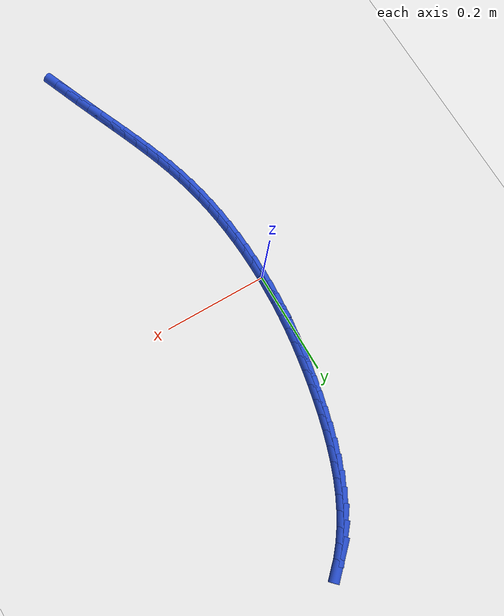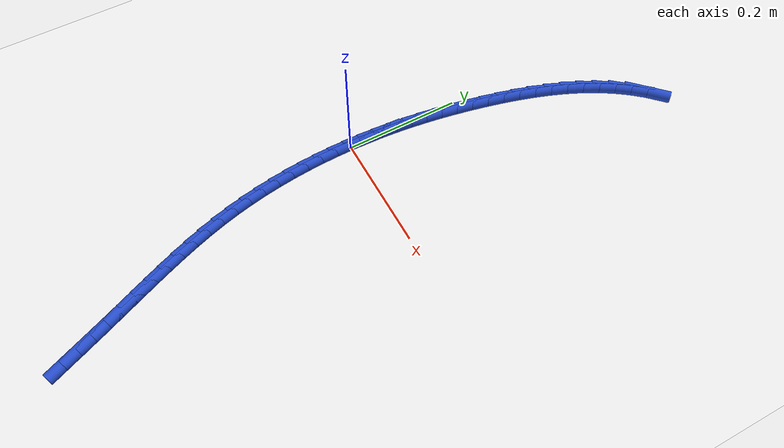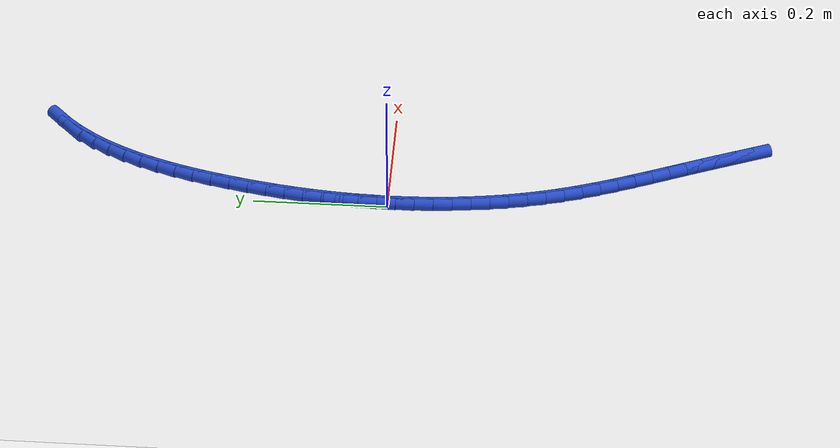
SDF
<sdf version="1.6">
 <world name="default">
  <model name="ground_plane">
   <static>1</static>
   <link name="link">
    <collision name="collision">
     <geometry><plane><normal>0 0 1</normal><size>100 100</size></plane></geometry>
     <surface><friction><ode><mu>100</mu><mu2>50</mu2></ode></friction></surface>
    </collision>
    <visual name="visual">
     <cast_shadows>0</cast_shadows>
     <geometry><plane><normal>0 0 1</normal><size>100 100</size></plane></geometry>
     <material>
      <script><uri>file://media/materials/scripts/gazebo.material</uri><name>Gazebo/WhiteGlow</name></script>
     </material>
    </visual>
   </link>
  </model>
  <model name="line">
   <link name="link_0">
    <pose>1.1709383462843448e-17 -4.163336342344337e-17 0.01 0 1.57 1.5477169663119001</pose>
    <collision name="collision">
     <geometry><cylinder><radius>0.01</radius><length>0.08</length></cylinder></geometry>
    </collision>
    <visual name="visual">
     <material>
      <script><name>Gazebo/Blue</name><uri>file://media/materials/scripts/gazebo.material</uri></script>
     </material>
     <geometry><cylinder><radius>0.01</radius><length>0.08</length></cylinder></geometry>
    </visual>
   </link>
   <link name="link_1">
    <pose>0.0006372369864877311 0.027605783966620057 0.01 0 1.57 1.5208260116175845</pose>
    <collision name="collision">
     <geometry><cylinder><radius>0.01</radius><length>0.08</length></cylinder></geometry>
    </collision>
    <visual name="visual">
     <material>
      <script><name>Gazebo/Blue</name><uri>file://media/materials/scripts/gazebo.material</uri></script>
     </material>
     <geometry><cylinder><radius>0.01</radius><length>0.08</length></cylinder></geometry>
    </visual>
   </link>
   <link name="link_2">
    <pose>0.002013287063719354 0.055120209970029525 0.01 0 1.57 1.4944857000101304</pose>
    <collision name="collision">
     <geometry><cylinder><radius>0.01</radius><length>0.08</length></cylinder></geometry>
    </collision>
    <visual name="visual">
     <material>
      <script><name>Gazebo/Blue</name><uri>file://media/materials/scripts/gazebo.material</uri></script>
     </material>
     <geometry><cylinder><radius>0.01</radius><length>0.08</length></cylinder></geometry>
    </visual>
   </link>
   <link name="link_3">
    <pose>0.004112599532662749 0.08257688266017513 0.01 0 1.57 1.4688265475651985</pose>
    <collision name="collision">
     <geometry><cylinder><radius>0.01</radius><length>0.08</length></cylinder></geometry>
    </collision>
    <visual name="visual">
     <material>
      <script><name>Gazebo/Blue</name><uri>file://media/materials/scripts/gazebo.material</uri></script>
     </material>
     <geometry><cylinder><radius>0.01</radius><length>0.08</length></cylinder></geometry>
    </visual>
   </link>
   <link name="link_4">
    <pose>0.006919623694285787 0.11000940668700365 0.01 0 1.57 1.4439686259812823</pose>
    <collision name="collision">
     <geometry><cylinder><radius>0.01</radius><length>0.08</length></cylinder></geometry>
    </collision>
    <visual name="visual">
     <material>
      <script><name>Gazebo/Blue</name><uri>file://media/materials/scripts/gazebo.material</uri></script>
     </material>
     <geometry><cylinder><radius>0.01</radius><length>0.08</length></cylinder></geometry>
    </visual>
   </link>
   <link name="link_5">
    <pose>0.010418808849556344 0.137451386700462 0.01 0 1.57 1.4200196261016933</pose>
    <collision name="collision">
     <geometry><cylinder><radius>0.01</radius><length>0.08</length></cylinder></geometry>
    </collision>
    <visual name="visual">
     <material>
      <script><name>Gazebo/Blue</name><uri>file://media/materials/scripts/gazebo.material</uri></script>
     </material>
     <geometry><cylinder><radius>0.01</radius><length>0.08</length></cylinder></geometry>
    </visual>
   </link>
   <link name="link_6">
    <pose>0.014594604299442293 0.16493642735049693 0.01 0 1.57 1.3970734556359719</pose>
    <collision name="collision">
     <geometry><cylinder><radius>0.01</radius><length>0.08</length></cylinder></geometry>
    </collision>
    <visual name="visual">
     <material>
      <script><name>Gazebo/Blue</name><uri>file://media/materials/scripts/gazebo.material</uri></script>
     </material>
     <geometry><cylinder><radius>0.01</radius><length>0.08</length></cylinder></geometry>
    </visual>
   </link>
   <link name="link_7">
    <pose>0.01943145934491149 0.19249813328705517 0.01 0 1.57 1.375209386396989</pose>
    <collision name="collision">
     <geometry><cylinder><radius>0.01</radius><length>0.08</length></cylinder></geometry>
    </collision>
    <visual name="visual">
     <material>
      <script><name>Gazebo/Blue</name><uri>file://media/materials/scripts/gazebo.material</uri></script>
     </material>
     <geometry><cylinder><radius>0.01</radius><length>0.08</length></cylinder></geometry>
    </visual>
   </link>
   <link name="link_8">
    <pose>0.02491382328693183 0.2201701091600837 0.01 0 1.57 1.3544606109612891</pose>
    <collision name="collision">
     <geometry><cylinder><radius>0.01</radius><length>0.08</length></cylinder></geometry>
    </collision>
    <visual name="visual">
     <material>
      <script><name>Gazebo/Blue</name><uri>file://media/materials/scripts/gazebo.material</uri></script>
     </material>
     <geometry><cylinder><radius>0.01</radius><length>0.08</length></cylinder></geometry>
    </visual>
   </link>
   <link name="link_9">
    <pose>0.031026825061611793 0.2479849233616371 0.01 0 1.57 1.3326482929232633</pose>
    <collision name="collision">
     <geometry><cylinder><radius>0.01</radius><length>0.08</length></cylinder></geometry>
    </collision>
    <visual name="visual">
     <material>
      <script><name>Gazebo/Blue</name><uri>file://media/materials/scripts/gazebo.material</uri></script>
     </material>
     <geometry><cylinder><radius>0.01</radius><length>0.08</length></cylinder></geometry>
    </visual>
   </link>
   <link name="link_10">
    <pose>0.0378037564586045 0.2759017090916938 0.01 0 1.57 1.306014679405112</pose>
    <collision name="collision">
     <geometry><cylinder><radius>0.01</radius><length>0.08</length></cylinder></geometry>
    </collision>
    <visual name="visual">
     <material>
      <script><name>Gazebo/Blue</name><uri>file://media/materials/scripts/gazebo.material</uri></script>
     </material>
     <geometry><cylinder><radius>0.01</radius><length>0.08</length></cylinder></geometry>
    </visual>
   </link>
   <link name="link_11">
    <pose>0.04535714930381764 0.30375878014576996 0.01 0 1.57 1.2739533902682214</pose>
    <collision name="collision">
     <geometry><cylinder><radius>0.01</radius><length>0.08</length></cylinder></geometry>
    </collision>
    <visual name="visual">
     <material>
      <script><name>Gazebo/Blue</name><uri>file://media/materials/scripts/gazebo.material</uri></script>
     </material>
     <geometry><cylinder><radius>0.01</radius><length>0.08</length></cylinder></geometry>
    </visual>
   </link>
   <link name="link_12">
    <pose>0.05380691766932157 0.33138319441104125 0.01 0 1.57 1.2361039346219016</pose>
    <collision name="collision">
     <geometry><cylinder><radius>0.01</radius><length>0.08</length></cylinder></geometry>
    </collision>
    <visual name="visual">
     <material>
      <script><name>Gazebo/Blue</name><uri>file://media/materials/scripts/gazebo.material</uri></script>
     </material>
     <geometry><cylinder><radius>0.01</radius><length>0.08</length></cylinder></geometry>
    </visual>
   </link>
   <link name="link_13">
    <pose>0.06327297562718671 0.3586020097746833 0.01 0 1.57 1.1920336675245837</pose>
    <collision name="collision">
     <geometry><cylinder><radius>0.01</radius><length>0.08</length></cylinder></geometry>
    </collision>
    <visual name="visual">
     <material>
      <script><name>Gazebo/Blue</name><uri>file://media/materials/scripts/gazebo.material</uri></script>
     </material>
     <geometry><cylinder><radius>0.01</radius><length>0.08</length></cylinder></geometry>
    </visual>
   </link>
   <link name="link_14">
    <pose>0.07387523724948343 0.3852422841238716 0.01 0 1.57 1.1412676272345132</pose>
    <collision name="collision">
     <geometry><cylinder><radius>0.01</radius><length>0.08</length></cylinder></geometry>
    </collision>
    <visual name="visual">
     <material>
      <script><name>Gazebo/Blue</name><uri>file://media/materials/scripts/gazebo.material</uri></script>
     </material>
     <geometry><cylinder><radius>0.01</radius><length>0.08</length></cylinder></geometry>
    </visual>
   </link>
   <link name="link_15">
    <pose>0.08573361660828208 0.41113107534578175 0.01 0 1.57 1.0833346409436182</pose>
    <collision name="collision">
     <geometry><cylinder><radius>0.01</radius><length>0.08</length></cylinder></geometry>
    </collision>
    <visual name="visual">
     <material>
      <script><name>Gazebo/Blue</name><uri>file://media/materials/scripts/gazebo.material</uri></script>
     </material>
     <geometry><cylinder><radius>0.01</radius><length>0.08</length></cylinder></geometry>
    </visual>
   </link>
   <link name="link_16">
    <pose>0.09896802777565307 0.43609544132758954 0.01 0 1.57 1.0178364290178308</pose>
    <collision name="collision">
     <geometry><cylinder><radius>0.01</radius><length>0.08</length></cylinder></geometry>
    </collision>
    <visual name="visual">
     <material>
      <script><name>Gazebo/Blue</name><uri>file://media/materials/scripts/gazebo.material</uri></script>
     </material>
     <geometry><cylinder><radius>0.01</radius><length>0.08</length></cylinder></geometry>
    </visual>
   </link>
   <link name="link_17">
    <pose>0.11369838482366677 0.4599624399564705 0.01 0 1.57 0.9445443046762868</pose>
    <collision name="collision">
     <geometry><cylinder><radius>0.01</radius><length>0.08</length></cylinder></geometry>
    </collision>
    <visual name="visual">
     <material>
      <script><name>Gazebo/Blue</name><uri>file://media/materials/scripts/gazebo.material</uri></script>
     </material>
     <geometry><cylinder><radius>0.01</radius><length>0.08</length></cylinder></geometry>
    </visual>
   </link>
   <link name="link_18">
    <pose>0.1300446018243936 0.4825591291196002 0.01 0 1.57 0.8635213175206563</pose>
    <collision name="collision">
     <geometry><cylinder><radius>0.01</radius><length>0.08</length></cylinder></geometry>
    </collision>
    <visual name="visual">
     <material>
      <script><name>Gazebo/Blue</name><uri>file://media/materials/scripts/gazebo.material</uri></script>
     </material>
     <geometry><cylinder><radius>0.01</radius><length>0.08</length></cylinder></geometry>
    </visual>
   </link>
   <link name="link_19">
    <pose>0.14812659284990395 0.5037125667041544 0.01 0 1.57 0.7752544705329076</pose>
    <collision name="collision">
     <geometry><cylinder><radius>0.01</radius><length>0.08</length></cylinder></geometry>
    </collision>
    <visual name="visual">
     <material>
      <script><name>Gazebo/Blue</name><uri>file://media/materials/scripts/gazebo.material</uri></script>
     </material>
     <geometry><cylinder><radius>0.01</radius><length>0.08</length></cylinder></geometry>
    </visual>
   </link>
   <link name="link_240">
    <pose>0.14220766807498603 -0.5324271964626893 0.01 0 1.57 -1.1844091263384255</pose>
    <collision name="collision">
     <geometry><cylinder><radius>0.01</radius><length>0.08</length></cylinder></geometry>
    </collision>
    <visual name="visual">
     <material>
      <script><name>Gazebo/Blue</name><uri>file://media/materials/scripts/gazebo.material</uri></script>
     </material>
     <geometry><cylinder><radius>0.01</radius><length>0.08</length></cylinder></geometry>
    </visual>
   </link>
   <link name="link_241">
    <pose>0.13169623109699752 -0.5065902808544741 0.01 0 1.57 -1.183439328278393</pose>
    <collision name="collision">
     <geometry><cylinder><radius>0.01</radius><length>0.08</length></cylinder></geometry>
    </collision>
    <visual name="visual">
     <material>
      <script><name>Gazebo/Blue</name><uri>file://media/materials/scripts/gazebo.material</uri></script>
     </material>
     <geometry><cylinder><radius>0.01</radius><length>0.08</length></cylinder></geometry>
    </visual>
   </link>
   <link name="link_242">
    <pose>0.12115928360073576 -0.48076244658674777 0.01 0 1.57 -1.1782596443730402</pose>
    <collision name="collision">
     <geometry><cylinder><radius>0.01</radius><length>0.08</length></cylinder></geometry>
    </collision>
    <visual name="visual">
     <material>
      <script><name>Gazebo/Blue</name><uri>file://media/materials/scripts/gazebo.material</uri></script>
     </material>
     <geometry><cylinder><radius>0.01</radius><length>0.08</length></cylinder></geometry>
    </visual>
   </link>
   <link name="link_243">
    <pose>0.11049278536423592 -0.4549994088244656 0.01 0 1.57 -1.1726548277838589</pose>
    <collision name="collision">
     <geometry><cylinder><radius>0.01</radius><length>0.08</length></cylinder></geometry>
    </collision>
    <visual name="visual">
     <material>
      <script><name>Gazebo/Blue</name><uri>file://media/materials/scripts/gazebo.material</uri></script>
     </material>
     <geometry><cylinder><radius>0.01</radius><length>0.08</length></cylinder></geometry>
    </visual>
   </link>
   <link name="link_244">
    <pose>0.09968949535819392 -0.4293142409694779 0.01 0 1.57 -1.1718510475159616</pose>
    <collision name="collision">
     <geometry><cylinder><radius>0.01</radius><length>0.08</length></cylinder></geometry>
    </collision>
    <visual name="visual">
     <material>
      <script><name>Gazebo/Blue</name><uri>file://media/materials/scripts/gazebo.material</uri></script>
     </material>
     <geometry><cylinder><radius>0.01</radius><length>0.08</length></cylinder></geometry>
    </visual>
   </link>
   <link name="link_245">
    <pose>0.08887548129467063 -0.40366129155607144 0.01 0 1.57 -1.1762425992064227</pose>
    <collision name="collision">
     <geometry><cylinder><radius>0.01</radius><length>0.08</length></cylinder></geometry>
    </collision>
    <visual name="visual">
     <material>
      <script><name>Gazebo/Blue</name><uri>file://media/materials/scripts/gazebo.material</uri></script>
     </material>
     <geometry><cylinder><radius>0.01</radius><length>0.08</length></cylinder></geometry>
    </visual>
   </link>
   <link name="link_246">
    <pose>0.07818652377988447 -0.3779906304161996 0.01 0 1.57 -1.1858499541561454</pose>
    <collision name="collision">
     <geometry><cylinder><radius>0.01</radius><length>0.08</length></cylinder></geometry>
    </collision>
    <visual name="visual">
     <material>
      <script><name>Gazebo/Blue</name><uri>file://media/materials/scripts/gazebo.material</uri></script>
     </material>
     <geometry><cylinder><radius>0.01</radius><length>0.08</length></cylinder></geometry>
    </visual>
   </link>
   <link name="link_247">
    <pose>0.06775840342005297 -0.3522523273818136 0.01 0 1.57 -1.2006967818491139</pose>
    <collision name="collision">
     <geometry><cylinder><radius>0.01</radius><length>0.08</length></cylinder></geometry>
    </collision>
    <visual name="visual">
     <material>
      <script><name>Gazebo/Blue</name><uri>file://media/materials/scripts/gazebo.material</uri></script>
     </material>
     <geometry><cylinder><radius>0.01</radius><length>0.08</length></cylinder></geometry>
    </visual>
   </link>
   <link name="link_248">
    <pose>0.057726900821393895 -0.32639645228486547 0.01 0 1.57 -1.2208020921485874</pose>
    <collision name="collision">
     <geometry><cylinder><radius>0.01</radius><length>0.08</length></cylinder></geometry>
    </collision>
    <visual name="visual">
     <material>
      <script><name>Gazebo/Blue</name><uri>file://media/materials/scripts/gazebo.material</uri></script>
     </material>
     <geometry><cylinder><radius>0.01</radius><length>0.08</length></cylinder></geometry>
    </visual>
   </link>
   <link name="link_249">
    <pose>0.04822779659012511 -0.3003730749573073 0.01 0 1.57 -1.246167923196564</pose>
    <collision name="collision">
     <geometry><cylinder><radius>0.01</radius><length>0.08</length></cylinder></geometry>
    </collision>
    <visual name="visual">
     <material>
      <script><name>Gazebo/Blue</name><uri>file://media/materials/scripts/gazebo.material</uri></script>
     </material>
     <geometry><cylinder><radius>0.01</radius><length>0.08</length></cylinder></geometry>
    </visual>
   </link>
   <link name="link_250">
    <pose>0.0393968713324644 -0.274132265231091 0.01 0 1.57 -1.2767626492802373</pose>
    <collision name="collision">
     <geometry><cylinder><radius>0.01</radius><length>0.08</length></cylinder></geometry>
    </collision>
    <visual name="visual">
     <material>
      <script><name>Gazebo/Blue</name><uri>file://media/materials/scripts/gazebo.material</uri></script>
     </material>
     <geometry><cylinder><radius>0.01</radius><length>0.08</length></cylinder></geometry>
    </visual>
   </link>
   <link name="link_251">
    <pose>0.031369905654629604 -0.24762409293816873 0.01 0 1.57 -1.312141316417187</pose>
    <collision name="collision">
     <geometry><cylinder><radius>0.01</radius><length>0.08</length></cylinder></geometry>
    </collision>
    <visual name="visual">
     <material>
      <script><name>Gazebo/Blue</name><uri>file://media/materials/scripts/gazebo.material</uri></script>
     </material>
     <geometry><cylinder><radius>0.01</radius><length>0.08</length></cylinder></geometry>
    </visual>
   </link>
   <link name="link_252">
    <pose>0.024273853139209222 -0.22080422006695502 0.01 0 1.57 -1.3483638427350646</pose>
    <collision name="collision">
     <geometry><cylinder><radius>0.01</radius><length>0.08</length></cylinder></geometry>
    </collision>
    <visual name="visual">
     <material>
      <script><name>Gazebo/Blue</name><uri>file://media/materials/scripts/gazebo.material</uri></script>
     </material>
     <geometry><cylinder><radius>0.01</radius><length>0.08</length></cylinder></geometry>
    </visual>
   </link>
   <link name="link_253">
    <pose>0.01814091928576039 -0.19368833406033364 0.01 0 1.57 -1.3831454957275078</pose>
    <collision name="collision">
     <geometry><cylinder><radius>0.01</radius><length>0.08</length></cylinder></geometry>
    </collision>
    <visual name="visual">
     <material>
      <script><name>Gazebo/Blue</name><uri>file://media/materials/scripts/gazebo.material</uri></script>
     </material>
     <geometry><cylinder><radius>0.01</radius><length>0.08</length></cylinder></geometry>
    </visual>
   </link>
   <link name="link_254">
    <pose>0.01294572080082022 -0.16632860640775016 0.01 0 1.57 -1.4165496292088284</pose>
    <collision name="collision">
     <geometry><cylinder><radius>0.01</radius><length>0.08</length></cylinder></geometry>
    </collision>
    <visual name="visual">
     <material>
      <script><name>Gazebo/Blue</name><uri>file://media/materials/scripts/gazebo.material</uri></script>
     </material>
     <geometry><cylinder><radius>0.01</radius><length>0.08</length></cylinder></geometry>
    </visual>
   </link>
   <link name="link_255">
    <pose>0.008662061744569767 -0.13877772343193587 0.01 0 1.57 -1.4486769802801756</pose>
    <collision name="collision">
     <geometry><cylinder><radius>0.01</radius><length>0.08</length></cylinder></geometry>
    </collision>
    <visual name="visual">
     <material>
      <script><name>Gazebo/Blue</name><uri>file://media/materials/scripts/gazebo.material</uri></script>
     </material>
     <geometry><cylinder><radius>0.01</radius><length>0.08</length></cylinder></geometry>
    </visual>
   </link>
   <link name="link_256">
    <pose>0.005263746177190077 -0.11108837145562206 0.01 0 1.57 -1.479630983907477</pose>
    <collision name="collision">
     <geometry><cylinder><radius>0.01</radius><length>0.08</length></cylinder></geometry>
    </collision>
    <visual name="visual">
     <material>
      <script><name>Gazebo/Blue</name><uri>file://media/materials/scripts/gazebo.material</uri></script>
     </material>
     <geometry><cylinder><radius>0.01</radius><length>0.08</length></cylinder></geometry>
    </visual>
   </link>
   <link name="link_257">
    <pose>0.002724578158862205 -0.0833132368015402 0.01 0 1.57 -1.509516623509865</pose>
    <collision name="collision">
     <geometry><cylinder><radius>0.01</radius><length>0.08</length></cylinder></geometry>
    </collision>
    <visual name="visual">
     <material>
      <script><name>Gazebo/Blue</name><uri>file://media/materials/scripts/gazebo.material</uri></script>
     </material>
     <geometry><cylinder><radius>0.01</radius><length>0.08</length></cylinder></geometry>
    </visual>
   </link>
   <link name="link_258">
    <pose>0.001018361749767202 -0.05550500579242165 0.01 0 1.57 -1.5384396952078967</pose>
    <collision name="collision">
     <geometry><cylinder><radius>0.01</radius><length>0.08</length></cylinder></geometry>
    </collision>
    <visual name="visual">
     <material>
      <script><name>Gazebo/Blue</name><uri>file://media/materials/scripts/gazebo.material</uri></script>
     </material>
     <geometry><cylinder><radius>0.01</radius><length>0.08</length></cylinder></geometry>
    </visual>
   </link>
   <link name="link_259">
    <pose>0.00011890101008611926 -0.027716364750997806 0.01 0 1.57 -1.5665064322951214</pose>
    <collision name="collision">
     <geometry><cylinder><radius>0.01</radius><length>0.08</length></cylinder></geometry>
    </collision>
    <visual name="visual">
     <material>
      <script><name>Gazebo/Blue</name><uri>file://media/materials/scripts/gazebo.material</uri></script>
     </material>
     <geometry><cylinder><radius>0.01</radius><length>0.08</length></cylinder></geometry>
    </visual>
   </link>
   <link name="link_260">
    <pose>7.37257477290143e-18 -4.85722573273506e-17 0.01 0 1.57 1.547769209329348</pose>
    <collision name="collision">
     <geometry><cylinder><radius>0.01</radius><length>0.08</length></cylinder></geometry>
    </collision>
    <visual name="visual">
     <material>
      <script><name>Gazebo/Blue</name><uri>file://media/materials/scripts/gazebo.material</uri></script>
     </material>
     <geometry><cylinder><radius>0.01</radius><length>0.08</length></cylinder></geometry>
    </visual>
   </link>
   <link name="link_261">
    <pose>0.0006354627796899201 0.027591402137840237 0.01 0 1.57 1.5210947190452682</pose>
    <collision name="collision">
     <geometry><cylinder><radius>0.01</radius><length>0.08</length></cylinder></geometry>
    </collision>
    <visual name="visual">
     <material>
      <script><name>Gazebo/Blue</name><uri>file://media/materials/scripts/gazebo.material</uri></script>
     </material>
     <geometry><cylinder><radius>0.01</radius><length>0.08</length></cylinder></geometry>
    </visual>
   </link>
   <link name="link_262">
    <pose>0.0019990934093369076 0.0550051553397917 0.01 0 1.57 1.53446856961536</pose>
    <collision name="collision">
     <geometry><cylinder><radius>0.01</radius><length>0.08</length></cylinder></geometry>
    </collision>
    <visual name="visual">
     <material>
      <script><name>Gazebo/Blue</name><uri>file://media/materials/scripts/gazebo.material</uri></script>
     </material>
     <geometry><cylinder><radius>0.01</radius><length>0.08</length></cylinder></geometry>
    </visual>
   </link>
  </model>
 </world>
</sdf>
